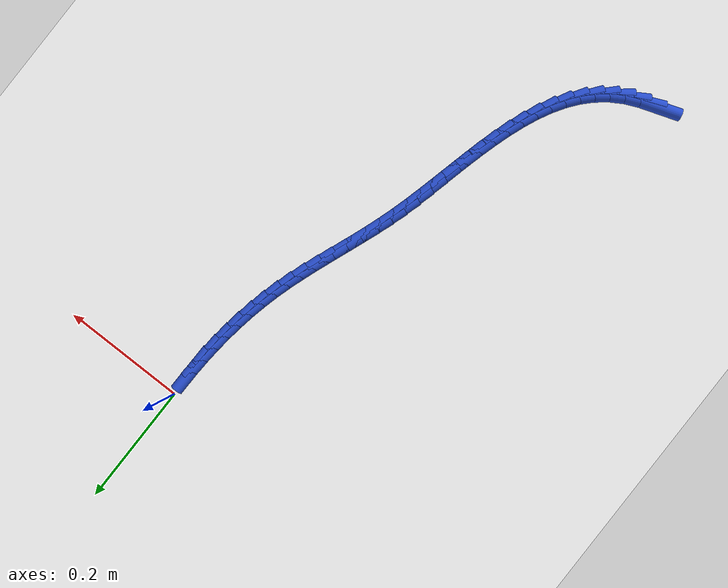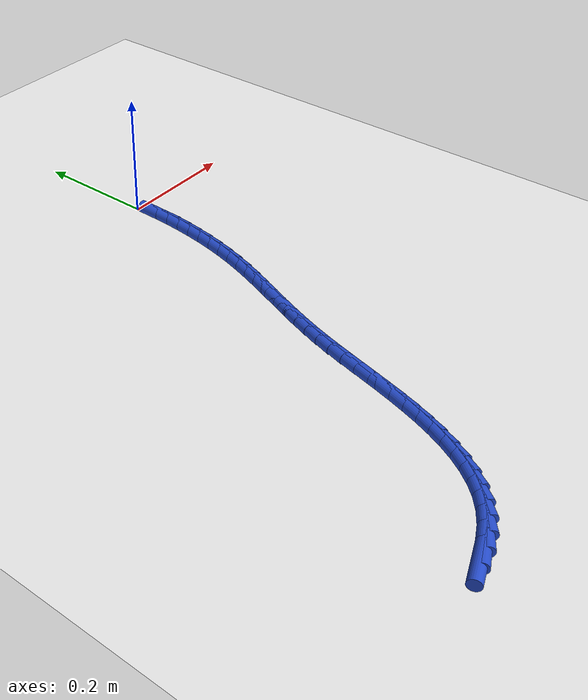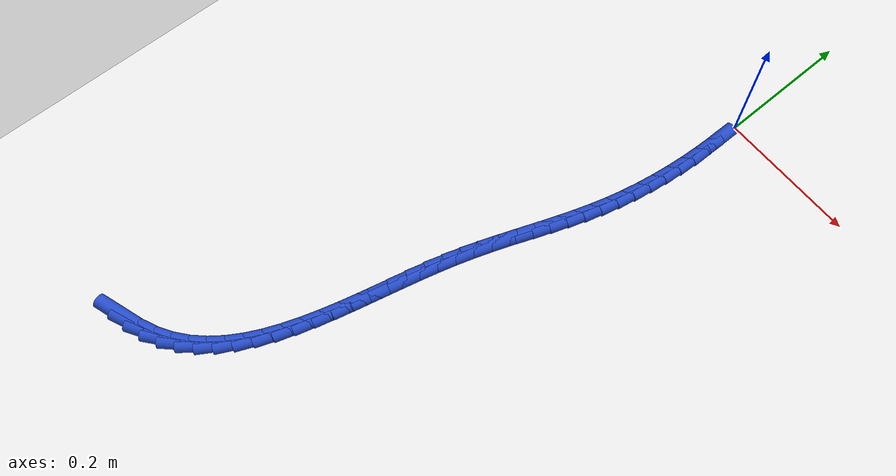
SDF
<sdf version="1.6">
 <world name="default">
  <model name="ground_plane">
   <static>1</static>
   <link name="link">
    <collision name="collision">
     <geometry><plane><normal>0 0 1</normal><size>100 100</size></plane></geometry>
     <surface><friction><ode><mu>100</mu><mu2>50</mu2></ode></friction></surface>
    </collision>
    <visual name="visual">
     <cast_shadows>0</cast_shadows>
     <geometry><plane><normal>0 0 1</normal><size>100 100</size></plane></geometry>
     <material>
      <script><uri>file://media/materials/scripts/gazebo.material</uri><name>Gazebo/WhiteGlow</name></script>
     </material>
    </visual>
   </link>
  </model>
  <model name="line">
   <link name="link_244">
    <pose>-0.3141162618989615 -0.8147982819626219 0.01 0 1.57 0.332556905389797</pose>
    <collision name="collision">
     <geometry><cylinder><radius>0.01</radius><length>0.08</length></cylinder></geometry>
    </collision>
    <visual name="visual">
     <material>
      <script><name>Gazebo/Blue</name><uri>file://media/materials/scripts/gazebo.material</uri></script>
     </material>
     <geometry><cylinder><radius>0.01</radius><length>0.08</length></cylinder></geometry>
    </visual>
   </link>
   <link name="link_245">
    <pose>-0.2894774036849574 -0.8062884079549075 0.01 0 1.57 0.4266325910066453</pose>
    <collision name="collision">
     <geometry><cylinder><radius>0.01</radius><length>0.08</length></cylinder></geometry>
    </collision>
    <visual name="visual">
     <material>
      <script><name>Gazebo/Blue</name><uri>file://media/materials/scripts/gazebo.material</uri></script>
     </material>
     <geometry><cylinder><radius>0.01</radius><length>0.08</length></cylinder></geometry>
    </visual>
   </link>
   <link name="link_246">
    <pose>-0.2666724332975999 -0.7959223720469275 0.01 0 1.57 0.5529278605656985</pose>
    <collision name="collision">
     <geometry><cylinder><radius>0.01</radius><length>0.08</length></cylinder></geometry>
    </collision>
    <visual name="visual">
     <material>
      <script><name>Gazebo/Blue</name><uri>file://media/materials/scripts/gazebo.material</uri></script>
     </material>
     <geometry><cylinder><radius>0.01</radius><length>0.08</length></cylinder></geometry>
    </visual>
   </link>
   <link name="link_247">
    <pose>-0.24614954331373898 -0.7832568571132961 0.01 0 1.57 0.6849257687732457</pose>
    <collision name="collision">
     <geometry><cylinder><radius>0.01</radius><length>0.08</length></cylinder></geometry>
    </collision>
    <visual name="visual">
     <material>
      <script><name>Gazebo/Blue</name><uri>file://media/materials/scripts/gazebo.material</uri></script>
     </material>
     <geometry><cylinder><radius>0.01</radius><length>0.08</length></cylinder></geometry>
    </visual>
   </link>
   <link name="link_248">
    <pose>-0.22787624327000974 -0.7683304779801512 0.01 0 1.57 0.8085205911593295</pose>
    <collision name="collision">
     <geometry><cylinder><radius>0.01</radius><length>0.08</length></cylinder></geometry>
    </collision>
    <visual name="visual">
     <material>
      <script><name>Gazebo/Blue</name><uri>file://media/materials/scripts/gazebo.material</uri></script>
     </material>
     <geometry><cylinder><radius>0.01</radius><length>0.08</length></cylinder></geometry>
    </visual>
   </link>
   <link name="link_249">
    <pose>-0.21165799094644294 -0.7513443222733196 0.01 0 1.57 0.9197199798688865</pose>
    <collision name="collision">
     <geometry><cylinder><radius>0.01</radius><length>0.08</length></cylinder></geometry>
    </collision>
    <visual name="visual">
     <material>
      <script><name>Gazebo/Blue</name><uri>file://media/materials/scripts/gazebo.material</uri></script>
     </material>
     <geometry><cylinder><radius>0.01</radius><length>0.08</length></cylinder></geometry>
    </visual>
   </link>
   <link name="link_250">
    <pose>-0.19730012002099065 -0.7324996020431499 0.01 0 1.57 1.016474847192867</pose>
    <collision name="collision">
     <geometry><cylinder><radius>0.01</radius><length>0.08</length></cylinder></geometry>
    </collision>
    <visual name="visual">
     <material>
      <script><name>Gazebo/Blue</name><uri>file://media/materials/scripts/gazebo.material</uri></script>
     </material>
     <geometry><cylinder><radius>0.01</radius><length>0.08</length></cylinder></geometry>
    </visual>
   </link>
   <link name="link_251">
    <pose>-0.18460796417160494 -0.711997529339991 0.01 0 1.57 1.098370874378823</pose>
    <collision name="collision">
     <geometry><cylinder><radius>0.01</radius><length>0.08</length></cylinder></geometry>
    </collision>
    <visual name="visual">
     <material>
      <script><name>Gazebo/Blue</name><uri>file://media/materials/scripts/gazebo.material</uri></script>
     </material>
     <geometry><cylinder><radius>0.01</radius><length>0.08</length></cylinder></geometry>
    </visual>
   </link>
   <link name="link_252">
    <pose>-0.17338685707623755 -0.6900393162141909 0.01 0 1.57 1.1660415569704004</pose>
    <collision name="collision">
     <geometry><cylinder><radius>0.01</radius><length>0.08</length></cylinder></geometry>
    </collision>
    <visual name="visual">
     <material>
      <script><name>Gazebo/Blue</name><uri>file://media/materials/scripts/gazebo.material</uri></script>
     </material>
     <geometry><cylinder><radius>0.01</radius><length>0.08</length></cylinder></geometry>
    </visual>
   </link>
   <link name="link_253">
    <pose>-0.16344213241284117 -0.6668261747160994 0.01 0 1.57 1.2206176507086062</pose>
    <collision name="collision">
     <geometry><cylinder><radius>0.01</radius><length>0.08</length></cylinder></geometry>
    </collision>
    <visual name="visual">
     <material>
      <script><name>Gazebo/Blue</name><uri>file://media/materials/scripts/gazebo.material</uri></script>
     </material>
     <geometry><cylinder><radius>0.01</radius><length>0.08</length></cylinder></geometry>
    </visual>
   </link>
   <link name="link_254">
    <pose>-0.15457912385936753 -0.6425593168960645 0.01 0 1.57 1.2633425056794292</pose>
    <collision name="collision">
     <geometry><cylinder><radius>0.01</radius><length>0.08</length></cylinder></geometry>
    </collision>
    <visual name="visual">
     <material>
      <script><name>Gazebo/Blue</name><uri>file://media/materials/scripts/gazebo.material</uri></script>
     </material>
     <geometry><cylinder><radius>0.01</radius><length>0.08</length></cylinder></geometry>
    </visual>
   </link>
   <link name="link_255">
    <pose>-0.14660316509376867 -0.6174399548044349 0.01 0 1.57 1.295349945792061</pose>
    <collision name="collision">
     <geometry><cylinder><radius>0.01</radius><length>0.08</length></cylinder></geometry>
    </collision>
    <visual name="visual">
     <material>
      <script><name>Gazebo/Blue</name><uri>file://media/materials/scripts/gazebo.material</uri></script>
     </material>
     <geometry><cylinder><radius>0.01</radius><length>0.08</length></cylinder></geometry>
    </visual>
   </link>
   <link name="link_256">
    <pose>-0.1393195897939967 -0.5916693004915593 0.01 0 1.57 1.3175550408532433</pose>
    <collision name="collision">
     <geometry><cylinder><radius>0.01</radius><length>0.08</length></cylinder></geometry>
    </collision>
    <visual name="visual">
     <material>
      <script><name>Gazebo/Blue</name><uri>file://media/materials/scripts/gazebo.material</uri></script>
     </material>
     <geometry><cylinder><radius>0.01</radius><length>0.08</length></cylinder></geometry>
    </visual>
   </link>
   <link name="link_257">
    <pose>-0.13253373163800355 -0.5654485660077864 0.01 0 1.57 1.3306090779843922</pose>
    <collision name="collision">
     <geometry><cylinder><radius>0.01</radius><length>0.08</length></cylinder></geometry>
    </collision>
    <visual name="visual">
     <material>
      <script><name>Gazebo/Blue</name><uri>file://media/materials/scripts/gazebo.material</uri></script>
     </material>
     <geometry><cylinder><radius>0.01</radius><length>0.08</length></cylinder></geometry>
    </visual>
   </link>
   <link name="link_258">
    <pose>-0.12605092430374143 -0.5389789634034646 0.01 0 1.57 1.33488479320954</pose>
    <collision name="collision">
     <geometry><cylinder><radius>0.01</radius><length>0.08</length></cylinder></geometry>
    </collision>
    <visual name="visual">
     <material>
      <script><name>Gazebo/Blue</name><uri>file://media/materials/scripts/gazebo.material</uri></script>
     </material>
     <geometry><cylinder><radius>0.01</radius><length>0.08</length></cylinder></geometry>
    </visual>
   </link>
   <link name="link_259">
    <pose>-0.11967650146916219 -0.5124617047289427 0.01 0 1.57 1.3304718914886133</pose>
    <collision name="collision">
     <geometry><cylinder><radius>0.01</radius><length>0.08</length></cylinder></geometry>
    </collision>
    <visual name="visual">
     <material>
      <script><name>Gazebo/Blue</name><uri>file://media/materials/scripts/gazebo.material</uri></script>
     </material>
     <geometry><cylinder><radius>0.01</radius><length>0.08</length></cylinder></geometry>
    </visual>
   </link>
   <link name="link_260">
    <pose>-0.11321579681221806 -0.4860980020345693 0.01 0 1.57 1.3171728249325922</pose>
    <collision name="collision">
     <geometry><cylinder><radius>0.01</radius><length>0.08</length></cylinder></geometry>
    </collision>
    <visual name="visual">
     <material>
      <script><name>Gazebo/Blue</name><uri>file://media/materials/scripts/gazebo.material</uri></script>
     </material>
     <geometry><cylinder><radius>0.01</radius><length>0.08</length></cylinder></geometry>
    </visual>
   </link>
   <link name="link_261">
    <pose>-0.10647414401086079 -0.46008906737069233 0.01 0 1.57 1.2944957713715788</pose>
    <collision name="collision">
     <geometry><cylinder><radius>0.01</radius><length>0.08</length></cylinder></geometry>
    </collision>
    <visual name="visual">
     <material>
      <script><name>Gazebo/Blue</name><uri>file://media/materials/scripts/gazebo.material</uri></script>
     </material>
     <geometry><cylinder><radius>0.01</radius><length>0.08</length></cylinder></geometry>
    </visual>
   </link>
   <link name="link_262">
    <pose>-0.09925687674304288 -0.434636112787662 0.01 0 1.57 1.2643144874620391</pose>
    <collision name="collision">
     <geometry><cylinder><radius>0.01</radius><length>0.08</length></cylinder></geometry>
    </collision>
    <visual name="visual">
     <material>
      <script><name>Gazebo/Blue</name><uri>file://media/materials/scripts/gazebo.material</uri></script>
     </material>
     <geometry><cylinder><radius>0.01</radius><length>0.08</length></cylinder></geometry>
    </visual>
   </link>
   <link name="link_263">
    <pose>-0.09142546790940184 -0.40988862638768214 0.01 0 1.57 1.2379399270506644</pose>
    <collision name="collision">
     <geometry><cylinder><radius>0.01</radius><length>0.08</length></cylinder></geometry>
    </collision>
    <visual name="visual">
     <material>
      <script><name>Gazebo/Blue</name><uri>file://media/materials/scripts/gazebo.material</uri></script>
     </material>
     <geometry><cylinder><radius>0.01</radius><length>0.08</length></cylinder></geometry>
    </visual>
   </link>
   <link name="link_264">
    <pose>-0.08308709098265432 -0.38576971972121443 0.01 0 1.57 1.2190919933062658</pose>
    <collision name="collision">
     <geometry><cylinder><radius>0.01</radius><length>0.08</length></cylinder></geometry>
    </collision>
    <visual name="visual">
     <material>
      <script><name>Gazebo/Blue</name><uri>file://media/materials/scripts/gazebo.material</uri></script>
     </material>
     <geometry><cylinder><radius>0.01</radius><length>0.08</length></cylinder></geometry>
    </visual>
   </link>
   <link name="link_265">
    <pose>-0.07441611889906659 -0.36214059002281673 0.01 0 1.57 1.2082691067515499</pose>
    <collision name="collision">
     <geometry><cylinder><radius>0.01</radius><length>0.08</length></cylinder></geometry>
    </collision>
    <visual name="visual">
     <material>
      <script><name>Gazebo/Blue</name><uri>file://media/materials/scripts/gazebo.material</uri></script>
     </material>
     <geometry><cylinder><radius>0.01</radius><length>0.08</length></cylinder></geometry>
    </visual>
   </link>
   <link name="link_266">
    <pose>-0.0655869262521389 -0.33886243300015223 0.01 0 1.57 1.2058335688243664</pose>
    <collision name="collision">
     <geometry><cylinder><radius>0.01</radius><length>0.08</length></cylinder></geometry>
    </collision>
    <visual name="visual">
     <material>
      <script><name>Gazebo/Blue</name><uri>file://media/materials/scripts/gazebo.material</uri></script>
     </material>
     <geometry><cylinder><radius>0.01</radius><length>0.08</length></cylinder></geometry>
    </visual>
   </link>
   <link name="link_267">
    <pose>-0.056773887635371625 -0.3157964443608844 0.01 0 1.57 1.2120151407446933</pose>
    <collision name="collision">
     <geometry><cylinder><radius>0.01</radius><length>0.08</length></cylinder></geometry>
    </collision>
    <visual name="visual">
     <material>
      <script><name>Gazebo/Blue</name><uri>file://media/materials/scripts/gazebo.material</uri></script>
     </material>
     <geometry><cylinder><radius>0.01</radius><length>0.08</length></cylinder></geometry>
    </visual>
   </link>
   <link name="link_268">
    <pose>-0.048151377642265035 -0.29280381981267617 0.01 0 1.57 1.226904025430058</pose>
    <collision name="collision">
     <geometry><cylinder><radius>0.01</radius><length>0.08</length></cylinder></geometry>
    </collision>
    <visual name="visual">
     <material>
      <script><name>Gazebo/Blue</name><uri>file://media/materials/scripts/gazebo.material</uri></script>
     </material>
     <geometry><cylinder><radius>0.01</radius><length>0.08</length></cylinder></geometry>
    </visual>
   </link>
   <link name="link_269">
    <pose>-0.03989377086631944 -0.26974575506319093 0.01 0 1.57 1.2504304820712397</pose>
    <collision name="collision">
     <geometry><cylinder><radius>0.01</radius><length>0.08</length></cylinder></geometry>
    </collision>
    <visual name="visual">
     <material>
      <script><name>Gazebo/Blue</name><uri>file://media/materials/scripts/gazebo.material</uri></script>
     </material>
     <geometry><cylinder><radius>0.01</radius><length>0.08</length></cylinder></geometry>
    </visual>
   </link>
   <link name="link_270">
    <pose>-0.03217544190103493 -0.24648344582009116 0.01 0 1.57 1.2823321542946189</pose>
    <collision name="collision">
     <geometry><cylinder><radius>0.01</radius><length>0.08</length></cylinder></geometry>
    </collision>
    <visual name="visual">
     <material>
      <script><name>Gazebo/Blue</name><uri>file://media/materials/scripts/gazebo.material</uri></script>
     </material>
     <geometry><cylinder><radius>0.01</radius><length>0.08</length></cylinder></geometry>
    </visual>
   </link>
   <link name="link_271">
    <pose>-0.02517076533991228 -0.22287808779104132 0.01 0 1.57 1.3205665211279862</pose>
    <collision name="collision">
     <geometry><cylinder><radius>0.01</radius><length>0.08</length></cylinder></geometry>
    </collision>
    <visual name="visual">
     <material>
      <script><name>Gazebo/Blue</name><uri>file://media/materials/scripts/gazebo.material</uri></script>
     </material>
     <geometry><cylinder><radius>0.01</radius><length>0.08</length></cylinder></geometry>
    </visual>
   </link>
   <link name="link_272">
    <pose>-0.019023792599903507 -0.19882764951912457 0.01 0 1.57 1.3583673972817114</pose>
    <collision name="collision">
     <geometry><cylinder><radius>0.01</radius><length>0.08</length></cylinder></geometry>
    </collision>
    <visual name="visual">
     <material>
      <script><name>Gazebo/Blue</name><uri>file://media/materials/scripts/gazebo.material</uri></script>
     </material>
     <geometry><cylinder><radius>0.01</radius><length>0.08</length></cylinder></geometry>
    </visual>
   </link>
   <link name="link_273">
    <pose>-0.01375170275897258 -0.17438395729493428 0.01 0 1.57 1.3943038712727442</pose>
    <collision name="collision">
     <geometry><cylinder><radius>0.01</radius><length>0.08</length></cylinder></geometry>
    </collision>
    <visual name="visual">
     <material>
      <script><name>Gazebo/Blue</name><uri>file://media/materials/scripts/gazebo.material</uri></script>
     </material>
     <geometry><cylinder><radius>0.01</radius><length>0.08</length></cylinder></geometry>
    </visual>
   </link>
   <link name="link_274">
    <pose>-0.00933849832828176 -0.1496390705432437 0.01 0 1.57 1.4286849949634322</pose>
    <collision name="collision">
     <geometry><cylinder><radius>0.01</radius><length>0.08</length></cylinder></geometry>
    </collision>
    <visual name="visual">
     <material>
      <script><name>Gazebo/Blue</name><uri>file://media/materials/scripts/gazebo.material</uri></script>
     </material>
     <geometry><cylinder><radius>0.01</radius><length>0.08</length></cylinder></geometry>
    </visual>
   </link>
   <link name="link_275">
    <pose>-0.005768181712131421 -0.12468504881841734 0.01 0 1.57 1.4618041100905654</pose>
    <collision name="collision">
     <geometry><cylinder><radius>0.01</radius><length>0.08</length></cylinder></geometry>
    </collision>
    <visual name="visual">
     <material>
      <script><name>Gazebo/Blue</name><uri>file://media/materials/scripts/gazebo.material</uri></script>
     </material>
     <geometry><cylinder><radius>0.01</radius><length>0.08</length></cylinder></geometry>
    </visual>
   </link>
   <link name="link_276">
    <pose>-0.003024755314821932 -0.09961395167481943 0.01 0 1.57 1.4939426941258722</pose>
    <collision name="collision">
     <geometry><cylinder><radius>0.01</radius><length>0.08</length></cylinder></geometry>
    </collision>
    <visual name="visual">
     <material>
      <script><name>Gazebo/Blue</name><uri>file://media/materials/scripts/gazebo.material</uri></script>
     </material>
     <geometry><cylinder><radius>0.01</radius><length>0.08</length></cylinder></geometry>
    </visual>
   </link>
   <link name="link_277">
    <pose>-0.0010922215406536705 -0.07451783866681448 0.01 0 1.57 1.5253748903094322</pose>
    <collision name="collision">
     <geometry><cylinder><radius>0.01</radius><length>0.08</length></cylinder></geometry>
    </collision>
    <visual name="visual">
     <material>
      <script><name>Gazebo/Blue</name><uri>file://media/materials/scripts/gazebo.material</uri></script>
     </material>
     <geometry><cylinder><radius>0.01</radius><length>0.08</length></cylinder></geometry>
    </visual>
   </link>
   <link name="link_278">
    <pose>4.541720607299099e-05 -0.049488769348766795 0.01 0 1.57 1.5563726466114616</pose>
    <collision name="collision">
     <geometry><cylinder><radius>0.01</radius><length>0.08</length></cylinder></geometry>
    </collision>
    <visual name="visual">
     <material>
      <script><name>Gazebo/Blue</name><uri>file://media/materials/scripts/gazebo.material</uri></script>
     </material>
     <geometry><cylinder><radius>0.01</radius><length>0.08</length></cylinder></geometry>
    </visual>
   </link>
  </model>
 </world>
</sdf>
